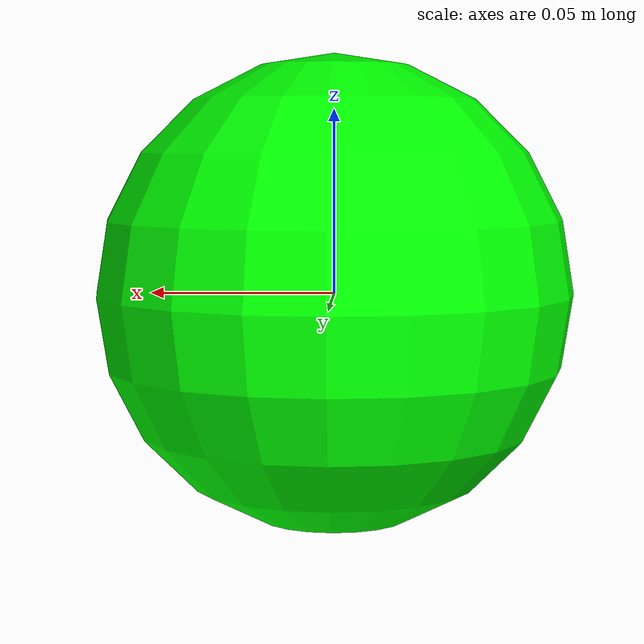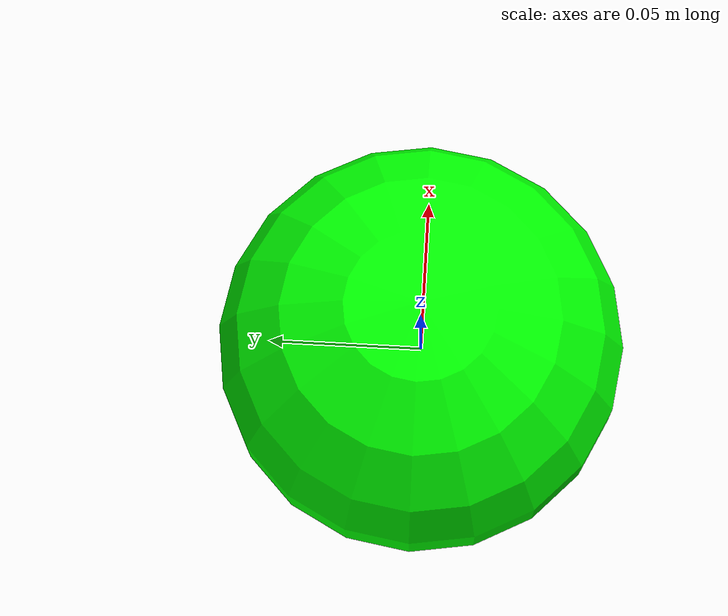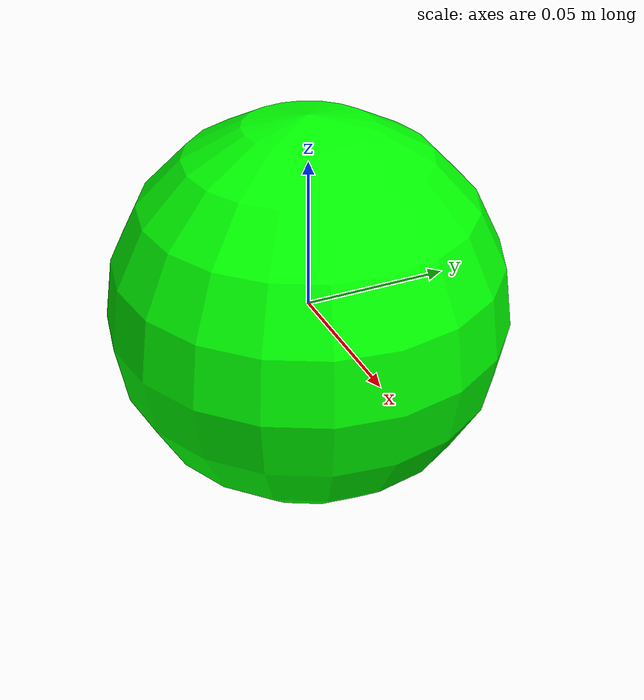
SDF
<?xml version='1.0'?>
<sdf version='1.7'>
  <model name='main_ball'>

    <link name='ball_link'>

      <inertial>
        <mass>0.057</mass>
        <inertia>
          <ixx>2.437E-5</ixx>
          <ixy>2.437E-5</ixy>
          <ixz>2.437E-5</ixz>
          <iyy>2.437E-5</iyy>
          <iyz>2.437E-5</iyz>
          <izz>2.437E-5</izz>
        </inertia>
        <pose>0 0 0 0 -0 0</pose>
      </inertial>

      <pose>-0 0 0 0 -0 0</pose>
      <gravity>1</gravity>
      <self_collide>0</self_collide>
      <kinematic>0</kinematic>
      <enable_wind>0</enable_wind>

      <visual name='visual'>
        <pose>0 0 0 0 0 0</pose>
        <geometry>
          <sphere>
            <radius>0.065</radius>
          </sphere>
        </geometry>
        <material>
          <lighting>1</lighting>

          <script>
            <uri>file://media/materials/scripts/gazebo.material</uri>
            <name>Gazebo/CoM</name>
          </script>

          <shader type='pixel'>
            <normal_map>__default__</normal_map>
          </shader>
          <ambient>0 1 0 1</ambient>
          <diffuse>0 1 0 1</diffuse>
          <specular>0 0 0 1</specular>
          <emissive>0 0 0 1</emissive>
        </material>
        <transparency>0</transparency>
        <cast_shadows>1</cast_shadows>
      </visual>

      <collision name='collision'>
        <laser_retro>0</laser_retro>
        <max_contacts>10</max_contacts>
        <pose>0 0 0 0 -0 0</pose>
        <geometry>
          <sphere>
            <radius>0.0327</radius>
          </sphere>
        </geometry>
        <surface>
          <friction>
            <ode>
              <mu>0.8</mu>
              <mu2>0.8</mu2>
              <fdir1>0 0 0</fdir1>
              <slip1>0.3</slip1>
              <slip2>0.3</slip2>
            </ode>
            <torsional>
              <coefficient>1</coefficient>
              <patch_radius>30000</patch_radius>
              <surface_radius>0.0327</surface_radius>
              <use_patch_radius>true</use_patch_radius>
              <ode>

                <slip>0</slip>
              </ode>
            </torsional>
          </friction>
          <bounce>
            <restitution_coefficient>0</restitution_coefficient>
            <threshold>100000</threshold>
          </bounce>
          <contact>
            <collide_without_contact>0</collide_without_contact>
            <collide_without_contact_bitmask>1</collide_without_contact_bitmask>
            <collide_bitmask>1</collide_bitmask>
            <poissons_ratio> 100 </poissons_ratio>
            <elastic_modulus> 100 </elastic_modulus>
            <ode>
              <soft_cfm>0</soft_cfm>
              <soft_erp>0.2</soft_erp>
              <kp>1200</kp>
              <kd>-0.7</kd>
              <max_vel>1000</max_vel>
              <min_depth>0.01</min_depth>
            </ode>
          </contact>
        </surface>
      </collision>
    </link>
    <static>0</static>
    <allow_auto_disable>1</allow_auto_disable>

    <link name="box">
      <self_collide>false</self_collide>
      <pose>0 0 0 0 0 0</pose>
      <inertial>
        <pose>0 0 0 0 0 0</pose>
        <mass>0.001</mass>
        <inertia>
          <ixx>0.000001</ixx>
          <iyy>0.000001</iyy>
          <izz>0.000001</izz>
          <ixy>0.000001</ixy>
          <ixz>0.000001</ixz>
          <iyz>0.000001</iyz>
        </inertia>
      </inertial>

      <visual name="visual">
        <geometry>
          <box>
            <size>0.05 0.010000000000000002 0.05</size>
          </box>
        </geometry>
      </visual>
    </link>

    <joint name = "joint_1" type="universal">
      <parent>box</parent>
      <child>ball_link</child>
      <axis>
        <xyz>1 1 1</xyz>
        <dynamics>
          <damping>10</damping>
          <spring_stiffness>10</spring_stiffness>
          <spring_reference>0.002</spring_reference>
        </dynamics>
      </axis>
    </joint>

  </model>
</sdf>
